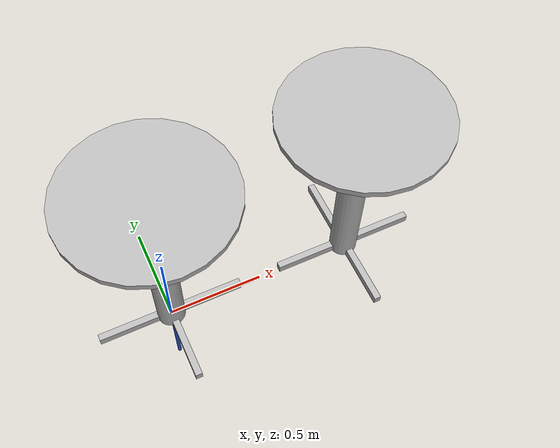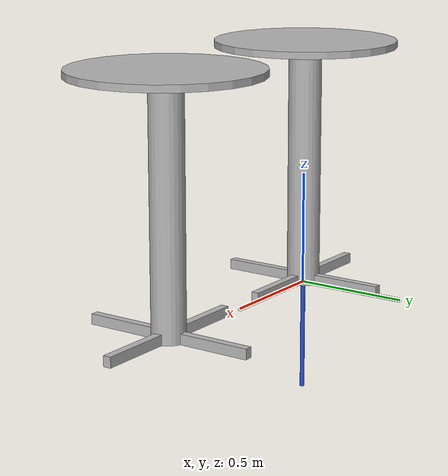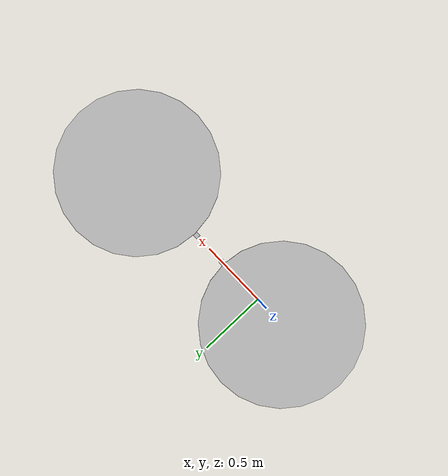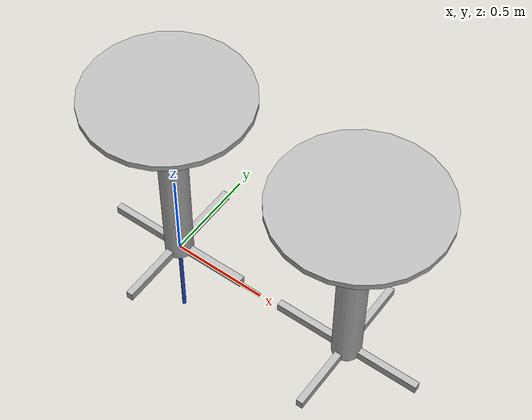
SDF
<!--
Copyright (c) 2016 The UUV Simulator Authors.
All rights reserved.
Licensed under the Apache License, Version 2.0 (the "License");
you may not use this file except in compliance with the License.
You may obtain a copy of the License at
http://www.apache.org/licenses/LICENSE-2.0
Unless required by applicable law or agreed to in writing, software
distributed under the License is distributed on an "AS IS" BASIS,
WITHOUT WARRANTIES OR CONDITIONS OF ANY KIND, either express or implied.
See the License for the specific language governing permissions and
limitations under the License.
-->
<sdf version="1.4">
 <world name="oceans_waves">
  <physics name="default_physics" default="true" type="ode">
   <max_step_size>0.002</max_step_size>
   <real_time_factor>1</real_time_factor>
   <real_time_update_rate>500</real_time_update_rate>
  </physics>
  <scene>
   <ambient>0.01 0.01 0.01 1.0</ambient>
   <sky><clouds><speed>12</speed></clouds></sky>
   <shadows>1</shadows>
  </scene>
  <spherical_coordinates>
   <latitude_deg>56.71897669633431</latitude_deg>
   <longitude_deg>3.515625</longitude_deg>
  </spherical_coordinates>
  <light type="directional" name="sun1">
   <pose>50 0 150 0 0 0</pose>
   <diffuse>1 1 1 1</diffuse>
   <specular>.1 .1 .1 1</specular>
   <direction>0.3 0.3 -1</direction>
   <cast_shadows>false</cast_shadows>
  </light>
  <light type="directional" name="sun_diffuse">
   <pose>-50 0 -150 0 0 0</pose>
   <diffuse>0.6 0.6 0.6 1</diffuse>
   <specular>0 0 0 1</specular>
   <direction>-0.3 -0.3 -1</direction>
   <cast_shadows>false</cast_shadows>
  </light>
  <include><uri>model://ned_frame</uri></include>
  <plugin name="underwater_current_plugin" filename="libuuv_underwater_current_ros_plugin.so">
   <namespace>hydrodynamics</namespace>
   <constant_current>
    <topic>current_velocity</topic>
    <velocity><mean>0</mean><min>0</min><max>5</max><mu>0.0</mu><noiseAmp>0.0</noiseAmp></velocity>
    <horizontal_angle>
     <mean>0</mean>
     <min>-3.141592653589793238</min>
     <max>3.141592653589793238</max>
     <mu>0.0</mu>
     <noiseAmp>0.0</noiseAmp>
    </horizontal_angle>
    <vertical_angle>
     <mean>0</mean>
     <min>-3.141592653589793238</min>
     <max>3.141592653589793238</max>
     <mu>0.0</mu>
     <noiseAmp>0.0</noiseAmp>
    </vertical_angle>
   </constant_current>
  </plugin>
  <plugin name="sc_interface" filename="libuuv_sc_ros_interface_plugin.so"/>
  <include><name>bar_0</name><uri>model://bar</uri></include>
 </world>
</sdf>

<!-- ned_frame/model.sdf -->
<sdf version='1.5'>
    <model name="world_ned">

      <pose>0 0 0 0 0 0</pose>
      <static>true</static>

      <link name="world_ned">
        <gravity>0</gravity>
        <pose>0 0 0 3.14159265359 0 1.5707963267948966</pose>

        <visual name="N_visual">
          <pose>0.25 0 0 1.5707963267948966 0 1.5707963267948966</pose>
          <geometry>
            <cylinder>
              <radius>0.01</radius>
              <length>0.5</length>
            </cylinder>
          </geometry>
          <material>
            <script>
              <uri>file://media/materials/scripts/gazebo.material</uri>
              <name>Gazebo/Red</name>
            </script>
          </material>
        </visual>

        <visual name="E_visual">
          <pose>0 0.25 0 1.5707963267948966 0 0</pose>
          <geometry>
            <cylinder>
              <radius>0.01</radius>
              <length>0.5</length>
            </cylinder>
          </geometry>
          <material>
            <script>
              <uri>file://media/materials/scripts/gazebo.material</uri>
              <name>Gazebo/Green</name>
            </script>
          </material>
        </visual>

        <visual name="D_visual">
          <pose>0 0 0.25 0 0 0</pose>
          <geometry>
            <cylinder>
              <radius>0.01</radius>
              <length>0.5</length>
            </cylinder>
          </geometry>
          <material>
            <script>
              <uri>file://media/materials/scripts/gazebo.material</uri>
              <name>Gazebo/Blue</name>
            </script>
          </material>
        </visual>
      </link>
    </model>
</sdf>

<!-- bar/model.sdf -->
<sdf version="1.6">
  <model name="rgo2018/bar">
    <link name="1_link">
      <collision name="1_col">
        <geometry>
          <cylinder>
            <length>0.03</length>
            <radius>0.4</radius>
          </cylinder>
        </geometry>
      </collision>
      <visual name="1_vis">
        <geometry>
          <cylinder>
            <length>0.03</length>
            <radius>0.4</radius>
          </cylinder>
        </geometry>
      </visual>
      <pose>0 0 1.085 0 0 0</pose>
    </link>
    <link name="2_link">
      <collision name="2_col">
        <geometry>
          <cylinder>
            <length>1.08</length>
            <radius>0.0725</radius>
          </cylinder>
        </geometry>
      </collision>
      <visual name="2_vis">
        <geometry>
          <cylinder>
            <length>1.08</length>
            <radius>0.0725</radius>
          </cylinder>
        </geometry>
      </visual>
      <pose>0 0 0.54 0 0 0</pose>
    </link>
    <link name="3_link">
      <collision name="3_col">
        <geometry>
          <box>
            <size>0.775 0.035 0.045</size>
          </box>
        </geometry>
      </collision>
      <visual name="3_vis">
        <geometry>
          <box>
            <size>0.775 0.035 0.045</size>
          </box>
        </geometry>
      </visual>
      <pose>0 0 0.0225 0 0 0</pose>
    </link>
    <link name="4_link">
      <collision name="4_col">
        <geometry>
          <box>
            <size>0.035 0.775 0.045</size>
          </box>
        </geometry>
      </collision>
      <visual name="4_vis">
        <geometry>
          <box>
            <size>0.035 0.775 0.045</size>
          </box>
        </geometry>
      </visual>
      <pose>0 0 0.0225 0 0 0</pose>
    </link>
    <link name="5_link">
      <collision name="5_col">
        <geometry>
          <cylinder>
            <length>0.03</length>
            <radius>0.4</radius>
          </cylinder>
        </geometry>
      </collision>
      <visual name="5_vis">
        <geometry>
          <cylinder>
            <length>0.03</length>
            <radius>0.4</radius>
          </cylinder>
        </geometry>
      </visual>
      <pose>1 0 1.085 0 0 0</pose>
    </link>
    <link name="6_link">
      <collision name="6_col">
        <geometry>
          <cylinder>
            <length>1.08</length>
            <radius>0.0725</radius>
          </cylinder>
        </geometry>
      </collision>
      <visual name="6_vis">
        <geometry>
          <cylinder>
            <length>1.08</length>
            <radius>0.0725</radius>
          </cylinder>
        </geometry>
      </visual>
      <pose>1 0 0.54 0 0 0</pose>
    </link>
    <link name="7_link">
      <collision name="7_col">
        <geometry>
          <box>
            <size>0.775 0.035 0.045</size>
          </box>
        </geometry>
      </collision>
      <visual name="7_vis">
        <geometry>
          <box>
            <size>0.775 0.035 0.045</size>
          </box>
        </geometry>
      </visual>
      <pose>1 0 0.0225 0 0 0</pose>
    </link>
    <link name="8_link">
      <collision name="8_col">
        <geometry>
          <box>
            <size>0.035 0.775 0.045</size>
          </box>
        </geometry>
      </collision>
      <visual name="8_vis">
        <geometry>
          <box>
            <size>0.035 0.775 0.045</size>
          </box>
        </geometry>
      </visual>
      <pose>1 0 0.0225 0 0 0</pose>
    </link>
    <link name="in_front_of">
      <virtual_volume name="in_front_of_vv">
        <geometry>
          <box>
            <size>1.6 0.25 0.01</size>
          </box>
        </geometry>
        <pose>0.5 0.775 0.005 0 0 0</pose>
      </virtual_volume>
    </link>
    <link name="on_top_of">
      <virtual_volume name="on_top_of_vv">
        <geometry>
          <box>
            <size>1.52 0.52 0.15</size>
          </box>
        </geometry>
        <pose>0.5 0.0 1.195 0 0 0</pose>
      </virtual_volume>
    </link>
    <static>true</static>
  </model>
</sdf>
